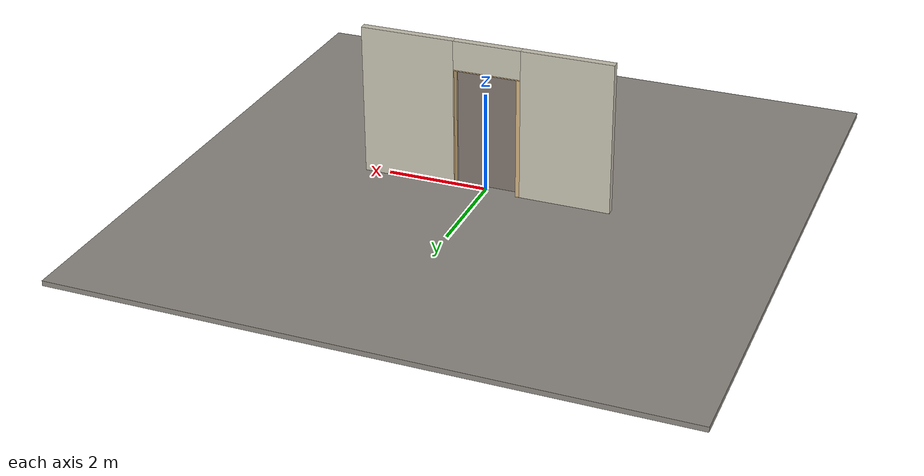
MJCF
<?xml version="1.0" ?>
<mujoco model="db0545_sliding_single_minimal">
  <compiler angle="radian" meshdir="../../hardware" texturedir="../../textures" autolimits="true" inertiafromgeom="false"/>
  <option timestep="0.002" integrator="implicitfast" cone="elliptic" impratio="10" noslip_iterations="3">
    <flag multiccd="enable"/>
  </option>
  <size memory="16M"/>
  <default>
    <geom condim="4" solref="0.005 1" solimp="0.95 0.99 0.001"/>
    <joint solreflimit="0.005 1" solimplimit="0.95 0.99 0.001"/>
    <tendon solreflimit="0.005 1"/>
    <equality solref="0.002 1"/>
  </default>
  <visual>
    <headlight ambient="0.4 0.4 0.4" diffuse="0.7 0.7 0.7" specular="0.2 0.2 0.2"/>
    <quality shadowsize="4096"/>
    <map znear="0.01" zfar="60"/>
  </visual>
  <asset>
    <mesh name="pull_2b47e55ff8" file="pull_2b47e55ff8.obj"/>
    <mesh name="thumbturn_eb5c9899a3" file="thumbturn_eb5c9899a3.obj"/>
    <material name="mat_floor" rgba="0.55 0.53 0.5 1" specular="0.2" shininess="0.15" reflectance="0"/>
    <material name="mat_wall" rgba="0.78 0.76 0.7 1" specular="0.2" shininess="0.1" reflectance="0"/>
    <material name="mat_frame" rgba="0.82 0.7 0.5 1" specular="0.2" shininess="0.45" reflectance="0"/>
    <material name="mat_track" rgba="0.05 0.05 0.05 1" specular="0.38" shininess="0.3" reflectance="0.12"/>
    <material name="mat_leaf" rgba="0.5 0.46 0.425 1" specular="0.2" shininess="0.15" reflectance="0"/>
    <material name="mat_leaf_brace" rgba="0.45 0.414 0.383 1" specular="0.2" shininess="0.2" reflectance="0"/>
    <material name="mat_roller" rgba="0.65 0.66 0.68 1" specular="0.74" shininess="0.5" reflectance="0.36"/>
    <material name="mat_op_black_matte_metal" rgba="0.05 0.05 0.05 1" specular="0.38" shininess="0.3" reflectance="0.12"/>
    <material name="mat_hook" rgba="0.75 0.76 0.77 1" specular="0.8" shininess="0.65" reflectance="0.4"/>
    <texture name="skybox" type="skybox" builtin="gradient" rgb1="0.6 0.7 0.85" rgb2="0.9 0.92 0.95" width="256" height="256"/>
  </asset>
  <worldbody>
    <light name="sun" pos="1.5 -2.5 4" dir="-0.3 0.5 -0.8" directional="true" diffuse="0.8 0.8 0.8" specular="0.3 0.3 0.3" castshadow="true"/>
    <light name="fill" pos="-1.5 2.5 3" dir="0.3 -0.5 -0.7" directional="true" diffuse="0.35 0.35 0.4" castshadow="false"/>
    <camera name="robot_view" pos="0 -2.89375 2.02025" xyaxes="1 0 0 0 0.26963 0.962964" fovy="52"/>
    <camera name="far_view" pos="0 2.89375 2.02025" xyaxes="-1 0 0 0 -0.26963 0.962964" fovy="52"/>
    <camera name="iso" pos="2.19925 -2.43075 2.48325" xyaxes="0.741536 0.670913 0 -0.242917 0.268487 0.932151" fovy="46"/>
    <camera name="detail_handle" pos="-0.3395 -0.9815 1.28" xyaxes="0.97561 0.219512 0 -0.070934 0.315262 0.94635" fovy="38"/>
    <geom name="floor" type="box" size="6 6 0.05" pos="0 0 -0.05" material="mat_floor" group="0" contype="1" conaffinity="1" friction="0.8 0.005 0.0001" density="2400"/>
    <geom name="wall_left" type="box" size="0.90075 0.0725 1.51" pos="-1.59925 0 1.51" material="mat_wall" group="0" contype="1" conaffinity="1" friction="0.6 0.005 0.0001" density="800"/>
    <geom name="wall_right" type="box" size="0.93075 0.0725 1.51" pos="1.56925 0 1.51" material="mat_wall" group="0" contype="1" conaffinity="1" friction="0.6 0.005 0.0001" density="800"/>
    <geom name="wall_header" type="box" size="0.6685 0.0725 0.2905" pos="-0.03 0 2.7295" material="mat_wall" group="0" contype="1" conaffinity="1" friction="0.6 0.005 0.0001" density="800"/>
    <geom name="jamb_r" type="box" size="0.0095 0.0725 1.21" pos="0.629 0 1.21" material="mat_frame" group="0" contype="1" conaffinity="1" friction="0.6 0.005 0.0001" density="300"/>
    <geom name="jamb_head" type="box" size="0.6385 0.0725 0.0095" pos="0 0 2.4295" material="mat_frame" group="0" contype="1" conaffinity="1" friction="0.6 0.005 0.0001" density="300"/>
    <geom name="leaf_hook_keeper" type="box" size="0.008 0.015 0.006" pos="-0.6275 -0.1145 1.08" material="mat_hook" group="0" contype="1" conaffinity="1" friction="0.6 0.005 0.0001" density="7900"/>
    <geom name="jamb_latch_0" type="box" size="0.0395 0.0725 1.21" pos="-0.659 0 1.21" material="mat_frame" group="0" contype="1" conaffinity="1" friction="0.6 0.005 0.0001" density="300"/>
    <site name="approach_point" pos="0 -1.5 0" quat="1 0 0 0" size="0.05" rgba="0.2 0.9 0.2 0.5" group="4"/>
    <site name="goal_point" pos="0 1.5 0" quat="1 0 0 0" size="0.05" rgba="0.2 0.9 0.2 0.5" group="4"/>
    <site name="door_plane_center" pos="0 0 1.21" quat="1 0 0 0" size="0.02" rgba="0.2 0.9 0.2 0.5" group="4"/>
    <body name="leaf" pos="0 -0.1145 0">
      <inertial pos="-0.004122 -0.000469 1.210318" mass="62.537678" quat="0.501048 -0.500183 -0.499919 -0.498848" diaginertia="7.827165954 29.819197333 37.622786602"/>
      <joint name="leaf_slide" type="slide" axis="1 0 0" limited="true" range="0 1.219" damping="5.139434" frictionloss="73.889584" armature="0.5"/>
      <geom name="leaf_slab" type="box" size="0.6095 0.022 1.2" pos="0 0 1.212" material="mat_leaf" group="0" contype="1" conaffinity="1" friction="0.45 0.005 0.0001" density="1"/>
      <geom name="leaf_pull_n" type="mesh" mesh="pull_2b47e55ff8" pos="-0.5195 -0.022 1" quat="0 0 -0.707107 0.707107" material="mat_op_black_matte_metal" group="1" contype="0" conaffinity="0" density="3000"/>
      <geom name="leaf_pull_col_n" type="capsule" size="0.006 0.13" pos="-0.5195 -0.067 1" material="mat_op_black_matte_metal" group="3" contype="1" conaffinity="1" rgba="0.8 0.3 0.3 0.25" friction="0.7 0.01 0.0001" density="3000"/>
      <site name="leaf_pull_grip_n" pos="-0.5195 -0.067 1" quat="1 0 0 0" size="0.012" rgba="0.2 0.9 0.2 0.5" group="4"/>
      <site name="leaf_edge_mid" pos="-0.6095 0 1.212" quat="1 0 0 0" size="0.02" rgba="0.2 0.9 0.2 0.5" group="4"/>
      <body name="leaf_hook_thumbturn" pos="-0.5495 -0.022 1.22">
        <inertial pos="0 -0.012928 0" mass="0.178946" quat="0.678504 0.199079 -0.199079 -0.678504" diaginertia="0.000026045 0.000026215 0.000032438"/>
        <joint name="leaf_hook_thumbturn_hinge" type="hinge" axis="0 1 0" limited="true" range="0 1" damping="0.05" frictionloss="0.25" armature="0.005" ref="1"/>
        <geom name="leaf_hook_tt_mesh" type="mesh" mesh="thumbturn_eb5c9899a3" pos="0 0 0" quat="0.339005 0.339005 -0.620545 0.620545" material="mat_hook" group="0" contype="1" conaffinity="1" friction="0.6 0.005 0.0001" density="7100"/>
        <geom name="leaf_hook_tt_col" type="box" size="0.006 0.012 0.016" pos="0 -0.02 0" quat="0.877583 0 0.479426 0" material="mat_hook" group="3" contype="1" conaffinity="1" rgba="0.8 0.3 0.3 0.25" friction="0.6 0.005 0.0001" density="7100"/>
        <site name="leaf_hook_tt_grip" pos="0 -0.03 0" quat="0.877583 0 0.479426 0" size="0.01" rgba="0.2 0.9 0.2 0.5" group="4"/>
      </body>
      <body name="leaf_hook" pos="-0.6095 0 1.08">
        <inertial pos="-0.006651 0 -0.027503" mass="0.072048" quat="0.148813 -0.148813 0.69127 0.69127" diaginertia="0.000005266 0.00001511 0.000019175"/>
        <joint name="leaf_hook_hinge" type="hinge" axis="0 -1 0" limited="true" range="0 1" damping="0.05" frictionloss="0.1" armature="0.005" ref="1"/>
        <geom name="leaf_hook_arm" type="box" size="0.022 0.005 0.006" pos="0.002657 0 -0.025474" quat="0.877583 0 -0.479426 0" material="mat_hook" group="0" contype="1" conaffinity="1" friction="0.6 0.005 0.0001" density="7900"/>
        <geom name="leaf_hook_tip" type="box" size="0.006 0.005 0.016" pos="-0.019451 0 -0.030293" quat="0.877583 0 -0.479426 0" material="mat_hook" group="0" contype="1" conaffinity="1" friction="0.6 0.005 0.0001" density="7900"/>
      </body>
    </body>
  </worldbody>
  <equality>
    <joint name="leaf_hook_couple" joint1="leaf_hook_hinge" joint2="leaf_hook_thumbturn_hinge" polycoef="0 1 0 0 0" active="true"/>
  </equality>
  <sensor>
    <jointpos name="leaf_slide_pos" joint="leaf_slide"/>
    <jointvel name="leaf_slide_vel" joint="leaf_slide"/>
    <jointpos name="leaf_hook_thumbturn_hinge_pos" joint="leaf_hook_thumbturn_hinge"/>
    <jointvel name="leaf_hook_thumbturn_hinge_vel" joint="leaf_hook_thumbturn_hinge"/>
    <jointpos name="leaf_hook_hinge_pos" joint="leaf_hook_hinge"/>
    <jointvel name="leaf_hook_hinge_vel" joint="leaf_hook_hinge"/>
  </sensor>
</mujoco>
